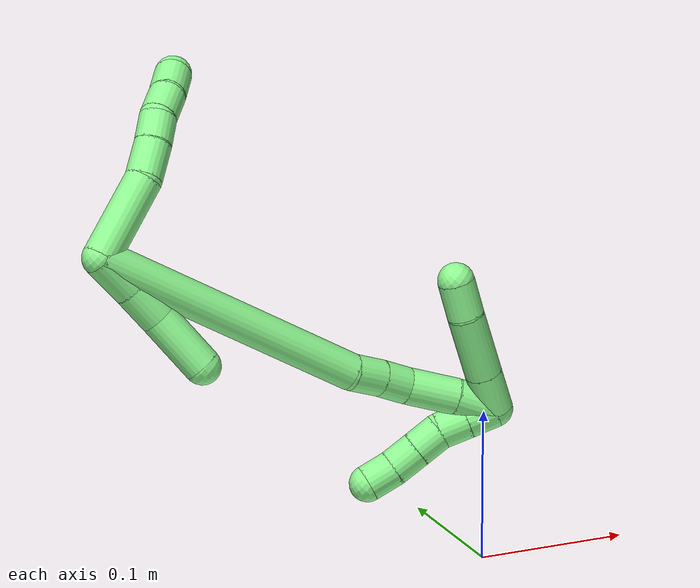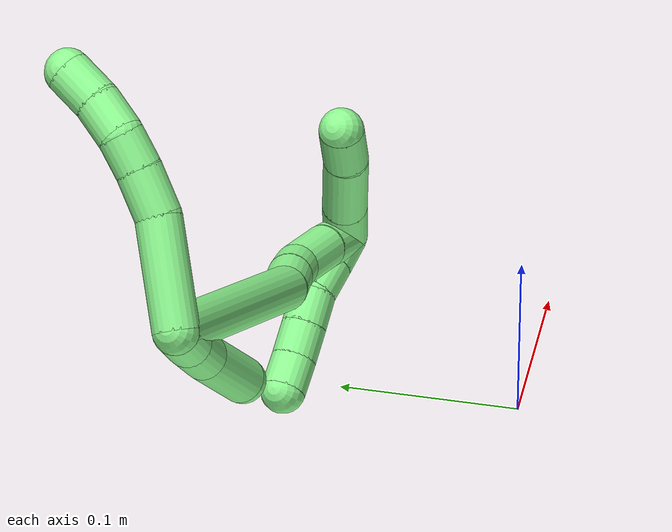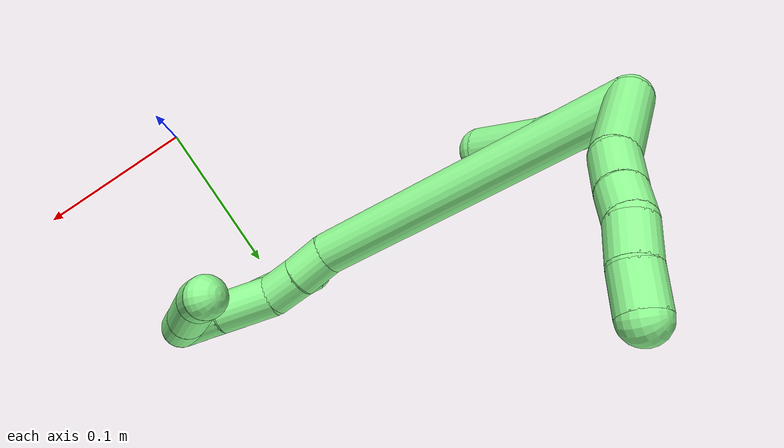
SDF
<sdf version="1.7">
 <world name="default">
  <model name="13">
   <static>0</static>
   <link name="13">
    <collision name="collision-cylinder-e_1_2_8">
     <pose>0.027789 0.009765 0.004593 -1.13111 1.20041 -0.819652</pose>
     <geometry><cylinder><radius>0.0125</radius><length>0.059622</length></cylinder></geometry>
     <surface>
      <friction><ode><mu>1.16</mu><mu2>1.16</mu2><slip1>0</slip1><slip2>0</slip2></ode></friction>
      <contact><ode><kp>1e+06</kp><kd>1</kd><max_vel>0</max_vel><min_depth>0.001</min_depth></ode></contact>
     </surface>
    </collision>
    <visual name="visual-cylinder-e_1_2_8">
     <pose>0.027789 0.009765 0.004593 -1.13111 1.20041 -0.819652</pose>
     <geometry><cylinder><radius>0.0125</radius><length>0.059622</length></cylinder></geometry>
     <material><ambient>0.564706 0.984314 0.572549 1</ambient></material>
    </visual>
    <collision name="collision-cylinder-e_2_8_9">
     <pose>0.066064 0.025843 0.013341 -0.988806 0.946174 -0.538442</pose>
     <geometry><cylinder><radius>0.0125</radius><length>0.025851</length></cylinder></geometry>
     <surface>
      <friction><ode><mu>1.16</mu><mu2>1.16</mu2><slip1>0</slip1><slip2>0</slip2></ode></friction>
      <contact><ode><kp>1e+06</kp><kd>1</kd><max_vel>0</max_vel><min_depth>0.001</min_depth></ode></contact>
     </surface>
    </collision>
    <visual name="visual-cylinder-e_2_8_9">
     <pose>0.066064 0.025843 0.013341 -0.988806 0.946174 -0.538442</pose>
     <geometry><cylinder><radius>0.0125</radius><length>0.025851</length></cylinder></geometry>
     <material><ambient>0.564706 0.984314 0.572549 1</ambient></material>
    </visual>
    <collision name="collision-cylinder-e_3_9_10">
     <pose>0.084157 0.037618 0.021088 -0.988894 0.861086 -0.485443</pose>
     <geometry><cylinder><radius>0.0125</radius><length>0.02006</length></cylinder></geometry>
     <surface>
      <friction><ode><mu>1.16</mu><mu2>1.16</mu2><slip1>0</slip1><slip2>0</slip2></ode></friction>
      <contact><ode><kp>1e+06</kp><kd>1</kd><max_vel>0</max_vel><min_depth>0.001</min_depth></ode></contact>
     </surface>
    </collision>
    <visual name="visual-cylinder-e_3_9_10">
     <pose>0.084157 0.037618 0.021088 -0.988894 0.861086 -0.485443</pose>
     <geometry><cylinder><radius>0.0125</radius><length>0.02006</length></cylinder></geometry>
     <material><ambient>0.564706 0.984314 0.572549 1</ambient></material>
    </visual>
    <collision name="collision-cylinder-e_4_10_11">
     <pose>0.099107 0.051107 0.0259 -1.42003 0.735008 -0.639164</pose>
     <geometry><cylinder><radius>0.0125</radius><length>0.021895</length></cylinder></geometry>
     <surface>
      <friction><ode><mu>1.16</mu><mu2>1.16</mu2><slip1>0</slip1><slip2>0</slip2></ode></friction>
      <contact><ode><kp>1e+06</kp><kd>1</kd><max_vel>0</max_vel><min_depth>0.001</min_depth></ode></contact>
     </surface>
    </collision>
    <visual name="visual-cylinder-e_4_10_11">
     <pose>0.099107 0.051107 0.0259 -1.42003 0.735008 -0.639164</pose>
     <geometry><cylinder><radius>0.0125</radius><length>0.021895</length></cylinder></geometry>
     <material><ambient>0.564706 0.984314 0.572549 1</ambient></material>
    </visual>
    <collision name="collision-cylinder-e_5_11_6">
     <pose>0.112656 0.068447 0.028581 -1.41516 0.582404 -0.501915</pose>
     <geometry><cylinder><radius>0.0125</radius><length>0.022572</length></cylinder></geometry>
     <surface>
      <friction><ode><mu>1.16</mu><mu2>1.16</mu2><slip1>0</slip1><slip2>0</slip2></ode></friction>
      <contact><ode><kp>1e+06</kp><kd>1</kd><max_vel>0</max_vel><min_depth>0.001</min_depth></ode></contact>
     </surface>
    </collision>
    <visual name="visual-cylinder-e_5_11_6">
     <pose>0.112656 0.068447 0.028581 -1.41516 0.582404 -0.501915</pose>
     <geometry><cylinder><radius>0.0125</radius><length>0.022572</length></cylinder></geometry>
     <material><ambient>0.564706 0.984314 0.572549 1</ambient></material>
    </visual>
    <collision name="collision-cylinder-e_1_2_12">
     <pose>-0.001376 0.003157 -0.014784 -2.93124 -0.090788 0.812705</pose>
     <geometry><cylinder><radius>0.0125</radius><length>0.03036</length></cylinder></geometry>
     <surface>
      <friction><ode><mu>1.16</mu><mu2>1.16</mu2><slip1>0</slip1><slip2>0</slip2></ode></friction>
      <contact><ode><kp>1e+06</kp><kd>1</kd><max_vel>0</max_vel><min_depth>0.001</min_depth></ode></contact>
     </surface>
    </collision>
    <visual name="visual-cylinder-e_1_2_12">
     <pose>-0.001376 0.003157 -0.014784 -2.93124 -0.090788 0.812705</pose>
     <geometry><cylinder><radius>0.0125</radius><length>0.03036</length></cylinder></geometry>
     <material><ambient>0.564706 0.984314 0.572549 1</ambient></material>
    </visual>
    <collision name="collision-cylinder-e_2_12_13">
     <pose>-0.004291 0.0075 -0.042837 -3.0524 -0.11501 1.82275</pose>
     <geometry><cylinder><radius>0.0125</radius><length>0.026821</length></cylinder></geometry>
     <surface>
      <friction><ode><mu>1.16</mu><mu2>1.16</mu2><slip1>0</slip1><slip2>0</slip2></ode></friction>
      <contact><ode><kp>1e+06</kp><kd>1</kd><max_vel>0</max_vel><min_depth>0.001</min_depth></ode></contact>
     </surface>
    </collision>
    <visual name="visual-cylinder-e_2_12_13">
     <pose>-0.004291 0.0075 -0.042837 -3.0524 -0.11501 1.82275</pose>
     <geometry><cylinder><radius>0.0125</radius><length>0.026821</length></cylinder></geometry>
     <material><ambient>0.564706 0.984314 0.572549 1</ambient></material>
    </visual>
    <collision name="collision-cylinder-e_3_13_5">
     <pose>-0.008415 0.006691 -0.077265 3.04756 -0.120995 -1.8207</pose>
     <geometry><cylinder><radius>0.0125</radius><length>0.042819</length></cylinder></geometry>
     <surface>
      <friction><ode><mu>1.16</mu><mu2>1.16</mu2><slip1>0</slip1><slip2>0</slip2></ode></friction>
      <contact><ode><kp>1e+06</kp><kd>1</kd><max_vel>0</max_vel><min_depth>0.001</min_depth></ode></contact>
     </surface>
    </collision>
    <visual name="visual-cylinder-e_3_13_5">
     <pose>-0.008415 0.006691 -0.077265 3.04756 -0.120995 -1.8207</pose>
     <geometry><cylinder><radius>0.0125</radius><length>0.042819</length></cylinder></geometry>
     <material><ambient>0.564706 0.984314 0.572549 1</ambient></material>
    </visual>
    <collision name="collision-cylinder-e_1_2_14">
     <pose>0.024023 0.016436 -0.09173 -2.9643 0.252287 -1.919</pose>
     <geometry><cylinder><radius>0.0125</radius><length>0.192474</length></cylinder></geometry>
     <surface>
      <friction><ode><mu>1.16</mu><mu2>1.16</mu2><slip1>0</slip1><slip2>0</slip2></ode></friction>
      <contact><ode><kp>1e+06</kp><kd>1</kd><max_vel>0</max_vel><min_depth>0.001</min_depth></ode></contact>
     </surface>
    </collision>
    <visual name="visual-cylinder-e_1_2_14">
     <pose>0.024023 0.016436 -0.09173 -2.9643 0.252287 -1.919</pose>
     <geometry><cylinder><radius>0.0125</radius><length>0.192474</length></cylinder></geometry>
     <material><ambient>0.564706 0.984314 0.572549 1</ambient></material>
    </visual>
    <collision name="collision-cylinder-e_2_14_15">
     <pose>0.052546 0.036857 -0.193102 -2.74966 0.407251 -1.61017</pose>
     <geometry><cylinder><radius>0.0125</radius><length>0.022726</length></cylinder></geometry>
     <surface>
      <friction><ode><mu>1.16</mu><mu2>1.16</mu2><slip1>0</slip1><slip2>0</slip2></ode></friction>
      <contact><ode><kp>1e+06</kp><kd>1</kd><max_vel>0</max_vel><min_depth>0.001</min_depth></ode></contact>
     </surface>
    </collision>
    <visual name="visual-cylinder-e_2_14_15">
     <pose>0.052546 0.036857 -0.193102 -2.74966 0.407251 -1.61017</pose>
     <geometry><cylinder><radius>0.0125</radius><length>0.022726</length></cylinder></geometry>
     <material><ambient>0.564706 0.984314 0.572549 1</ambient></material>
    </visual>
    <collision name="collision-cylinder-e_3_15_16">
     <pose>0.060756 0.044039 -0.212148 -2.81385 0.357442 -1.65914</pose>
     <geometry><cylinder><radius>0.0125</radius><length>0.021205</length></cylinder></geometry>
     <surface>
      <friction><ode><mu>1.16</mu><mu2>1.16</mu2><slip1>0</slip1><slip2>0</slip2></ode></friction>
      <contact><ode><kp>1e+06</kp><kd>1</kd><max_vel>0</max_vel><min_depth>0.001</min_depth></ode></contact>
     </surface>
    </collision>
    <visual name="visual-cylinder-e_3_15_16">
     <pose>0.060756 0.044039 -0.212148 -2.81385 0.357442 -1.65914</pose>
     <geometry><cylinder><radius>0.0125</radius><length>0.021205</length></cylinder></geometry>
     <material><ambient>0.564706 0.984314 0.572549 1</ambient></material>
    </visual>
    <collision name="collision-cylinder-e_4_16_17">
     <pose>0.072606 0.047656 -0.237231 -3.11489 0.478705 -3.03228</pose>
     <geometry><cylinder><radius>0.0125</radius><length>0.035343</length></cylinder></geometry>
     <surface>
      <friction><ode><mu>1.16</mu><mu2>1.16</mu2><slip1>0</slip1><slip2>0</slip2></ode></friction>
      <contact><ode><kp>1e+06</kp><kd>1</kd><max_vel>0</max_vel><min_depth>0.001</min_depth></ode></contact>
     </surface>
    </collision>
    <visual name="visual-cylinder-e_4_16_17">
     <pose>0.072606 0.047656 -0.237231 -3.11489 0.478705 -3.03228</pose>
     <geometry><cylinder><radius>0.0125</radius><length>0.035343</length></cylinder></geometry>
     <material><ambient>0.564706 0.984314 0.572549 1</ambient></material>
    </visual>
    <collision name="collision-cylinder-e_5_17_1">
     <pose>0.086107 0.04872 -0.265964 -3.0922 0.389294 -2.89229</pose>
     <geometry><cylinder><radius>0.0125</radius><length>0.028252</length></cylinder></geometry>
     <surface>
      <friction><ode><mu>1.16</mu><mu2>1.16</mu2><slip1>0</slip1><slip2>0</slip2></ode></friction>
      <contact><ode><kp>1e+06</kp><kd>1</kd><max_vel>0</max_vel><min_depth>0.001</min_depth></ode></contact>
     </surface>
    </collision>
    <visual name="visual-cylinder-e_5_17_1">
     <pose>0.086107 0.04872 -0.265964 -3.0922 0.389294 -2.89229</pose>
     <geometry><cylinder><radius>0.0125</radius><length>0.028252</length></cylinder></geometry>
     <material><ambient>0.564706 0.984314 0.572549 1</ambient></material>
    </visual>
    <collision name="collision-cylinder-e_1_1_18">
     <pose>0.082507 0.050046 -0.274632 -0.154017 -1.11099 0.095714</pose>
     <geometry><cylinder><radius>0.0125</radius><length>0.02</length></cylinder></geometry>
     <surface>
      <friction><ode><mu>1.16</mu><mu2>1.16</mu2><slip1>0</slip1><slip2>0</slip2></ode></friction>
      <contact><ode><kp>1e+06</kp><kd>1</kd><max_vel>0</max_vel><min_depth>0.001</min_depth></ode></contact>
     </surface>
    </collision>
    <visual name="visual-cylinder-e_1_1_18">
     <pose>0.082507 0.050046 -0.274632 -0.154017 -1.11099 0.095714</pose>
     <geometry><cylinder><radius>0.0125</radius><length>0.02</length></cylinder></geometry>
     <material><ambient>0.564706 0.984314 0.572549 1</ambient></material>
    </visual>
    <collision name="collision-cylinder-e_2_18_19">
     <pose>0.064636 0.051511 -0.265775 -0.173655 -1.09959 0.106587</pose>
     <geometry><cylinder><radius>0.0125</radius><length>0.02</length></cylinder></geometry>
     <surface>
      <friction><ode><mu>1.16</mu><mu2>1.16</mu2><slip1>0</slip1><slip2>0</slip2></ode></friction>
      <contact><ode><kp>1e+06</kp><kd>1</kd><max_vel>0</max_vel><min_depth>0.001</min_depth></ode></contact>
     </surface>
    </collision>
    <visual name="visual-cylinder-e_2_18_19">
     <pose>0.064636 0.051511 -0.265775 -0.173655 -1.09959 0.106587</pose>
     <geometry><cylinder><radius>0.0125</radius><length>0.02</length></cylinder></geometry>
     <material><ambient>0.564706 0.984314 0.572549 1</ambient></material>
    </visual>
    <collision name="collision-cylinder-e_3_19_20">
     <pose>0.045904 0.052134 -0.259427 0.085665 -1.38128 -0.070808</pose>
     <geometry><cylinder><radius>0.0125</radius><length>0.02</length></cylinder></geometry>
     <surface>
      <friction><ode><mu>1.16</mu><mu2>1.16</mu2><slip1>0</slip1><slip2>0</slip2></ode></friction>
      <contact><ode><kp>1e+06</kp><kd>1</kd><max_vel>0</max_vel><min_depth>0.001</min_depth></ode></contact>
     </surface>
    </collision>
    <visual name="visual-cylinder-e_3_19_20">
     <pose>0.045904 0.052134 -0.259427 0.085665 -1.38128 -0.070808</pose>
     <geometry><cylinder><radius>0.0125</radius><length>0.02</length></cylinder></geometry>
     <material><ambient>0.564706 0.984314 0.572549 1</ambient></material>
    </visual>
    <collision name="collision-cylinder-e_4_20_21">
     <pose>0.026267 0.051912 -0.255643 0.031806 -1.37884 -0.02622</pose>
     <geometry><cylinder><radius>0.0125</radius><length>0.02</length></cylinder></geometry>
     <surface>
      <friction><ode><mu>1.16</mu><mu2>1.16</mu2><slip1>0</slip1><slip2>0</slip2></ode></friction>
      <contact><ode><kp>1e+06</kp><kd>1</kd><max_vel>0</max_vel><min_depth>0.001</min_depth></ode></contact>
     </surface>
    </collision>
    <visual name="visual-cylinder-e_4_20_21">
     <pose>0.026267 0.051912 -0.255643 0.031806 -1.37884 -0.02622</pose>
     <geometry><cylinder><radius>0.0125</radius><length>0.02</length></cylinder></geometry>
     <material><ambient>0.564706 0.984314 0.572549 1</ambient></material>
    </visual>
    <collision name="collision-cylinder-e_5_21_4">
     <pose>0.007 0.051403 -0.250499 0.137618 -1.23789 -0.098104</pose>
     <geometry><cylinder><radius>0.0125</radius><length>0.02</length></cylinder></geometry>
     <surface>
      <friction><ode><mu>1.16</mu><mu2>1.16</mu2><slip1>0</slip1><slip2>0</slip2></ode></friction>
      <contact><ode><kp>1e+06</kp><kd>1</kd><max_vel>0</max_vel><min_depth>0.001</min_depth></ode></contact>
     </surface>
    </collision>
    <visual name="visual-cylinder-e_5_21_4">
     <pose>0.007 0.051403 -0.250499 0.137618 -1.23789 -0.098104</pose>
     <geometry><cylinder><radius>0.0125</radius><length>0.02</length></cylinder></geometry>
     <material><ambient>0.564706 0.984314 0.572549 1</ambient></material>
    </visual>
    <collision name="collision-cylinder-e_1_1_22">
     <pose>0.098149 0.04567 -0.26685 0.294821 0.483749 0.073232</pose>
     <geometry><cylinder><radius>0.0125</radius><length>0.028728</length></cylinder></geometry>
     <surface>
      <friction><ode><mu>1.16</mu><mu2>1.16</mu2><slip1>0</slip1><slip2>0</slip2></ode></friction>
      <contact><ode><kp>1e+06</kp><kd>1</kd><max_vel>0</max_vel><min_depth>0.001</min_depth></ode></contact>
     </surface>
    </collision>
    <visual name="visual-cylinder-e_1_1_22">
     <pose>0.098149 0.04567 -0.26685 0.294821 0.483749 0.073232</pose>
     <geometry><cylinder><radius>0.0125</radius><length>0.028728</length></cylinder></geometry>
     <material><ambient>0.564706 0.984314 0.572549 1</ambient></material>
    </visual>
    <collision name="collision-cylinder-e_2_22_23">
     <pose>0.115534 0.035573 -0.235236 0.318066 0.481746 0.078755</pose>
     <geometry><cylinder><radius>0.0125</radius><length>0.046205</length></cylinder></geometry>
     <surface>
      <friction><ode><mu>1.16</mu><mu2>1.16</mu2><slip1>0</slip1><slip2>0</slip2></ode></friction>
      <contact><ode><kp>1e+06</kp><kd>1</kd><max_vel>0</max_vel><min_depth>0.001</min_depth></ode></contact>
     </surface>
    </collision>
    <visual name="visual-cylinder-e_2_22_23">
     <pose>0.115534 0.035573 -0.235236 0.318066 0.481746 0.078755</pose>
     <geometry><cylinder><radius>0.0125</radius><length>0.046205</length></cylinder></geometry>
     <material><ambient>0.564706 0.984314 0.572549 1</ambient></material>
    </visual>
    <collision name="collision-cylinder-e_3_23_3">
     <pose>0.132677 0.027394 -0.205185 0.165891 0.539526 0.045967</pose>
     <geometry><cylinder><radius>0.0125</radius><length>0.025067</length></cylinder></geometry>
     <surface>
      <friction><ode><mu>1.16</mu><mu2>1.16</mu2><slip1>0</slip1><slip2>0</slip2></ode></friction>
      <contact><ode><kp>1e+06</kp><kd>1</kd><max_vel>0</max_vel><min_depth>0.001</min_depth></ode></contact>
     </surface>
    </collision>
    <visual name="visual-cylinder-e_3_23_3">
     <pose>0.132677 0.027394 -0.205185 0.165891 0.539526 0.045967</pose>
     <geometry><cylinder><radius>0.0125</radius><length>0.025067</length></cylinder></geometry>
     <material><ambient>0.564706 0.984314 0.572549 1</ambient></material>
    </visual>
    <collision name="collision-sphere-3">
     <pose>0.139116 0.025619 -0.194579 0 -0 0</pose>
     <geometry><sphere><radius>0.0125</radius></sphere></geometry>
     <surface>
      <friction><ode><mu>1.16</mu><mu2>1.16</mu2><slip1>0</slip1><slip2>0</slip2></ode></friction>
      <contact><ode><kp>1e+06</kp><kd>1</kd><max_vel>0</max_vel><min_depth>0.001</min_depth></ode></contact>
     </surface>
    </collision>
    <visual name="visual-sphere-3">
     <pose>0.139116 0.025619 -0.194579 0 -0 0</pose>
     <geometry><sphere><radius>0.0125</radius></sphere></geometry>
     <material><ambient>0.564706 0.984314 0.572549 1</ambient></material>
    </visual>
    <collision name="collision-sphere-23">
     <pose>0.126238 0.02917 -0.21579 0 -0 0</pose>
     <geometry><sphere><radius>0.0125</radius></sphere></geometry>
     <surface>
      <friction><ode><mu>1.16</mu><mu2>1.16</mu2><slip1>0</slip1><slip2>0</slip2></ode></friction>
      <contact><ode><kp>1e+06</kp><kd>1</kd><max_vel>0</max_vel><min_depth>0.001</min_depth></ode></contact>
     </surface>
    </collision>
    <visual name="visual-sphere-23">
     <pose>0.126238 0.02917 -0.21579 0 -0 0</pose>
     <geometry><sphere><radius>0.0125</radius></sphere></geometry>
     <material><ambient>0.564706 0.984314 0.572549 1</ambient></material>
    </visual>
    <collision name="collision-sphere-22">
     <pose>0.10483 0.041975 -0.254683 0 -0 0</pose>
     <geometry><sphere><radius>0.0125</radius></sphere></geometry>
     <surface>
      <friction><ode><mu>1.16</mu><mu2>1.16</mu2><slip1>0</slip1><slip2>0</slip2></ode></friction>
      <contact><ode><kp>1e+06</kp><kd>1</kd><max_vel>0</max_vel><min_depth>0.001</min_depth></ode></contact>
     </surface>
    </collision>
    <visual name="visual-sphere-22">
     <pose>0.10483 0.041975 -0.254683 0 -0 0</pose>
     <geometry><sphere><radius>0.0125</radius></sphere></geometry>
     <material><ambient>0.564706 0.984314 0.572549 1</ambient></material>
    </visual>
    <collision name="collision-sphere-4">
     <pose>-0.002451 0.050955 -0.247262 0 -0 0</pose>
     <geometry><sphere><radius>0.0125</radius></sphere></geometry>
     <surface>
      <friction><ode><mu>1.16</mu><mu2>1.16</mu2><slip1>0</slip1><slip2>0</slip2></ode></friction>
      <contact><ode><kp>1e+06</kp><kd>1</kd><max_vel>0</max_vel><min_depth>0.001</min_depth></ode></contact>
     </surface>
    </collision>
    <visual name="visual-sphere-4">
     <pose>-0.002451 0.050955 -0.247262 0 -0 0</pose>
     <geometry><sphere><radius>0.0125</radius></sphere></geometry>
     <material><ambient>0.564706 0.984314 0.572549 1</ambient></material>
    </visual>
    <collision name="collision-sphere-21">
     <pose>0.016451 0.051851 -0.253736 0 -0 0</pose>
     <geometry><sphere><radius>0.0125</radius></sphere></geometry>
     <surface>
      <friction><ode><mu>1.16</mu><mu2>1.16</mu2><slip1>0</slip1><slip2>0</slip2></ode></friction>
      <contact><ode><kp>1e+06</kp><kd>1</kd><max_vel>0</max_vel><min_depth>0.001</min_depth></ode></contact>
     </surface>
    </collision>
    <visual name="visual-sphere-21">
     <pose>0.016451 0.051851 -0.253736 0 -0 0</pose>
     <geometry><sphere><radius>0.0125</radius></sphere></geometry>
     <material><ambient>0.564706 0.984314 0.572549 1</ambient></material>
    </visual>
    <collision name="collision-sphere-20">
     <pose>0.036083 0.051973 -0.25755 0 -0 0</pose>
     <geometry><sphere><radius>0.0125</radius></sphere></geometry>
     <surface>
      <friction><ode><mu>1.16</mu><mu2>1.16</mu2><slip1>0</slip1><slip2>0</slip2></ode></friction>
      <contact><ode><kp>1e+06</kp><kd>1</kd><max_vel>0</max_vel><min_depth>0.001</min_depth></ode></contact>
     </surface>
    </collision>
    <visual name="visual-sphere-20">
     <pose>0.036083 0.051973 -0.25755 0 -0 0</pose>
     <geometry><sphere><radius>0.0125</radius></sphere></geometry>
     <material><ambient>0.564706 0.984314 0.572549 1</ambient></material>
    </visual>
    <collision name="collision-sphere-6">
     <pose>0.118863 0.077759 0.030042 0 -0 0</pose>
     <geometry><sphere><radius>0.0125</radius></sphere></geometry>
     <surface>
      <friction><ode><mu>1.16</mu><mu2>1.16</mu2><slip1>0</slip1><slip2>0</slip2></ode></friction>
      <contact><ode><kp>1e+06</kp><kd>1</kd><max_vel>0</max_vel><min_depth>0.001</min_depth></ode></contact>
     </surface>
    </collision>
    <visual name="visual-sphere-6">
     <pose>0.118863 0.077759 0.030042 0 -0 0</pose>
     <geometry><sphere><radius>0.0125</radius></sphere></geometry>
     <material><ambient>0.564706 0.984314 0.572549 1</ambient></material>
    </visual>
    <collision name="collision-sphere-11">
     <pose>0.106448 0.059136 0.02712 0 -0 0</pose>
     <geometry><sphere><radius>0.0125</radius></sphere></geometry>
     <surface>
      <friction><ode><mu>1.16</mu><mu2>1.16</mu2><slip1>0</slip1><slip2>0</slip2></ode></friction>
      <contact><ode><kp>1e+06</kp><kd>1</kd><max_vel>0</max_vel><min_depth>0.001</min_depth></ode></contact>
     </surface>
    </collision>
    <visual name="visual-sphere-11">
     <pose>0.106448 0.059136 0.02712 0 -0 0</pose>
     <geometry><sphere><radius>0.0125</radius></sphere></geometry>
     <material><ambient>0.564706 0.984314 0.572549 1</ambient></material>
    </visual>
    <collision name="collision-sphere-10">
     <pose>0.091765 0.043078 0.02468 0 -0 0</pose>
     <geometry><sphere><radius>0.0125</radius></sphere></geometry>
     <surface>
      <friction><ode><mu>1.16</mu><mu2>1.16</mu2><slip1>0</slip1><slip2>0</slip2></ode></friction>
      <contact><ode><kp>1e+06</kp><kd>1</kd><max_vel>0</max_vel><min_depth>0.001</min_depth></ode></contact>
     </surface>
    </collision>
    <visual name="visual-sphere-10">
     <pose>0.091765 0.043078 0.02468 0 -0 0</pose>
     <geometry><sphere><radius>0.0125</radius></sphere></geometry>
     <material><ambient>0.564706 0.984314 0.572549 1</ambient></material>
    </visual>
    <collision name="collision-sphere-9">
     <pose>0.076549 0.032158 0.017496 0 -0 0</pose>
     <geometry><sphere><radius>0.0125</radius></sphere></geometry>
     <surface>
      <friction><ode><mu>1.16</mu><mu2>1.16</mu2><slip1>0</slip1><slip2>0</slip2></ode></friction>
      <contact><ode><kp>1e+06</kp><kd>1</kd><max_vel>0</max_vel><min_depth>0.001</min_depth></ode></contact>
     </surface>
    </collision>
    <visual name="visual-sphere-9">
     <pose>0.076549 0.032158 0.017496 0 -0 0</pose>
     <geometry><sphere><radius>0.0125</radius></sphere></geometry>
     <material><ambient>0.564706 0.984314 0.572549 1</ambient></material>
    </visual>
    <collision name="collision-sphere-2">
     <geometry><sphere><radius>0.0125</radius></sphere></geometry>
     <surface>
      <friction><ode><mu>1.16</mu><mu2>1.16</mu2><slip1>0</slip1><slip2>0</slip2></ode></friction>
      <contact><ode><kp>1e+06</kp><kd>1</kd><max_vel>0</max_vel><min_depth>0.001</min_depth></ode></contact>
     </surface>
    </collision>
    <visual name="visual-sphere-2">
     <geometry><sphere><radius>0.0125</radius></sphere></geometry>
     <material><ambient>0.564706 0.984314 0.572549 1</ambient></material>
    </visual>
    <collision name="collision-sphere-19">
     <pose>0.055725 0.052295 -0.261304 0 -0 0</pose>
     <geometry><sphere><radius>0.0125</radius></sphere></geometry>
     <surface>
      <friction><ode><mu>1.16</mu><mu2>1.16</mu2><slip1>0</slip1><slip2>0</slip2></ode></friction>
      <contact><ode><kp>1e+06</kp><kd>1</kd><max_vel>0</max_vel><min_depth>0.001</min_depth></ode></contact>
     </surface>
    </collision>
    <visual name="visual-sphere-19">
     <pose>0.055725 0.052295 -0.261304 0 -0 0</pose>
     <geometry><sphere><radius>0.0125</radius></sphere></geometry>
     <material><ambient>0.564706 0.984314 0.572549 1</ambient></material>
    </visual>
    <collision name="collision-sphere-8">
     <pose>0.055579 0.019529 0.009186 0 -0 0</pose>
     <geometry><sphere><radius>0.0125</radius></sphere></geometry>
     <surface>
      <friction><ode><mu>1.16</mu><mu2>1.16</mu2><slip1>0</slip1><slip2>0</slip2></ode></friction>
      <contact><ode><kp>1e+06</kp><kd>1</kd><max_vel>0</max_vel><min_depth>0.001</min_depth></ode></contact>
     </surface>
    </collision>
    <visual name="visual-sphere-8">
     <pose>0.055579 0.019529 0.009186 0 -0 0</pose>
     <geometry><sphere><radius>0.0125</radius></sphere></geometry>
     <material><ambient>0.564706 0.984314 0.572549 1</ambient></material>
    </visual>
    <collision name="collision-sphere-12">
     <pose>-0.002752 0.006313 -0.029568 0 -0 0</pose>
     <geometry><sphere><radius>0.0125</radius></sphere></geometry>
     <surface>
      <friction><ode><mu>1.16</mu><mu2>1.16</mu2><slip1>0</slip1><slip2>0</slip2></ode></friction>
      <contact><ode><kp>1e+06</kp><kd>1</kd><max_vel>0</max_vel><min_depth>0.001</min_depth></ode></contact>
     </surface>
    </collision>
    <visual name="visual-sphere-12">
     <pose>-0.002752 0.006313 -0.029568 0 -0 0</pose>
     <geometry><sphere><radius>0.0125</radius></sphere></geometry>
     <material><ambient>0.564706 0.984314 0.572549 1</ambient></material>
    </visual>
    <collision name="collision-sphere-13">
     <pose>-0.00583 0.008686 -0.056106 0 -0 0</pose>
     <geometry><sphere><radius>0.0125</radius></sphere></geometry>
     <surface>
      <friction><ode><mu>1.16</mu><mu2>1.16</mu2><slip1>0</slip1><slip2>0</slip2></ode></friction>
      <contact><ode><kp>1e+06</kp><kd>1</kd><max_vel>0</max_vel><min_depth>0.001</min_depth></ode></contact>
     </surface>
    </collision>
    <visual name="visual-sphere-13">
     <pose>-0.00583 0.008686 -0.056106 0 -0 0</pose>
     <geometry><sphere><radius>0.0125</radius></sphere></geometry>
     <material><ambient>0.564706 0.984314 0.572549 1</ambient></material>
    </visual>
    <collision name="collision-sphere-5">
     <pose>-0.010999 0.004695 -0.098425 0 -0 0</pose>
     <geometry><sphere><radius>0.0125</radius></sphere></geometry>
     <surface>
      <friction><ode><mu>1.16</mu><mu2>1.16</mu2><slip1>0</slip1><slip2>0</slip2></ode></friction>
      <contact><ode><kp>1e+06</kp><kd>1</kd><max_vel>0</max_vel><min_depth>0.001</min_depth></ode></contact>
     </surface>
    </collision>
    <visual name="visual-sphere-5">
     <pose>-0.010999 0.004695 -0.098425 0 -0 0</pose>
     <geometry><sphere><radius>0.0125</radius></sphere></geometry>
     <material><ambient>0.564706 0.984314 0.572549 1</ambient></material>
    </visual>
    <collision name="collision-sphere-14">
     <pose>0.048045 0.032871 -0.183459 0 -0 0</pose>
     <geometry><sphere><radius>0.0125</radius></sphere></geometry>
     <surface>
      <friction><ode><mu>1.16</mu><mu2>1.16</mu2><slip1>0</slip1><slip2>0</slip2></ode></friction>
      <contact><ode><kp>1e+06</kp><kd>1</kd><max_vel>0</max_vel><min_depth>0.001</min_depth></ode></contact>
     </surface>
    </collision>
    <visual name="visual-sphere-14">
     <pose>0.048045 0.032871 -0.183459 0 -0 0</pose>
     <geometry><sphere><radius>0.0125</radius></sphere></geometry>
     <material><ambient>0.564706 0.984314 0.572549 1</ambient></material>
    </visual>
    <collision name="collision-sphere-15">
     <pose>0.057047 0.040842 -0.202745 0 -0 0</pose>
     <geometry><sphere><radius>0.0125</radius></sphere></geometry>
     <surface>
      <friction><ode><mu>1.16</mu><mu2>1.16</mu2><slip1>0</slip1><slip2>0</slip2></ode></friction>
      <contact><ode><kp>1e+06</kp><kd>1</kd><max_vel>0</max_vel><min_depth>0.001</min_depth></ode></contact>
     </surface>
    </collision>
    <visual name="visual-sphere-15">
     <pose>0.057047 0.040842 -0.202745 0 -0 0</pose>
     <geometry><sphere><radius>0.0125</radius></sphere></geometry>
     <material><ambient>0.564706 0.984314 0.572549 1</ambient></material>
    </visual>
    <collision name="collision-sphere-16">
     <pose>0.064466 0.047237 -0.221552 0 -0 0</pose>
     <geometry><sphere><radius>0.0125</radius></sphere></geometry>
     <surface>
      <friction><ode><mu>1.16</mu><mu2>1.16</mu2><slip1>0</slip1><slip2>0</slip2></ode></friction>
      <contact><ode><kp>1e+06</kp><kd>1</kd><max_vel>0</max_vel><min_depth>0.001</min_depth></ode></contact>
     </surface>
    </collision>
    <visual name="visual-sphere-16">
     <pose>0.064466 0.047237 -0.221552 0 -0 0</pose>
     <geometry><sphere><radius>0.0125</radius></sphere></geometry>
     <material><ambient>0.564706 0.984314 0.572549 1</ambient></material>
    </visual>
    <collision name="collision-sphere-17">
     <pose>0.080746 0.048074 -0.252911 0 -0 0</pose>
     <geometry><sphere><radius>0.0125</radius></sphere></geometry>
     <surface>
      <friction><ode><mu>1.16</mu><mu2>1.16</mu2><slip1>0</slip1><slip2>0</slip2></ode></friction>
      <contact><ode><kp>1e+06</kp><kd>1</kd><max_vel>0</max_vel><min_depth>0.001</min_depth></ode></contact>
     </surface>
    </collision>
    <visual name="visual-sphere-17">
     <pose>0.080746 0.048074 -0.252911 0 -0 0</pose>
     <geometry><sphere><radius>0.0125</radius></sphere></geometry>
     <material><ambient>0.564706 0.984314 0.572549 1</ambient></material>
    </visual>
    <collision name="collision-sphere-1">
     <pose>0.091469 0.049365 -0.279017 0 -0 0</pose>
     <geometry><sphere><radius>0.0125</radius></sphere></geometry>
     <surface>
      <friction><ode><mu>1.16</mu><mu2>1.16</mu2><slip1>0</slip1><slip2>0</slip2></ode></friction>
      <contact><ode><kp>1e+06</kp><kd>1</kd><max_vel>0</max_vel><min_depth>0.001</min_depth></ode></contact>
     </surface>
    </collision>
    <visual name="visual-sphere-1">
     <pose>0.091469 0.049365 -0.279017 0 -0 0</pose>
     <geometry><sphere><radius>0.0125</radius></sphere></geometry>
     <material><ambient>0.564706 0.984314 0.572549 1</ambient></material>
    </visual>
    <collision name="collision-sphere-18">
     <pose>0.073546 0.050726 -0.270247 0 -0 0</pose>
     <geometry><sphere><radius>0.0125</radius></sphere></geometry>
     <surface>
      <friction><ode><mu>1.16</mu><mu2>1.16</mu2><slip1>0</slip1><slip2>0</slip2></ode></friction>
      <contact><ode><kp>1e+06</kp><kd>1</kd><max_vel>0</max_vel><min_depth>0.001</min_depth></ode></contact>
     </surface>
    </collision>
    <visual name="visual-sphere-18">
     <pose>0.073546 0.050726 -0.270247 0 -0 0</pose>
     <geometry><sphere><radius>0.0125</radius></sphere></geometry>
     <material><ambient>0.564706 0.984314 0.572549 1</ambient></material>
    </visual>
    <inertial>
     <pose>0.049818 0.029374 -0.126522 0 -0 0</pose>
     <mass>0.75</mass>
     <inertia>
      <ixx>-0.000731</ixx>
      <ixy>0</ixy>
      <ixz>0</ixz>
      <iyy>-0.000272</iyy>
      <iyz>0</iyz>
      <izz>-0.000308</izz>
     </inertia>
    </inertial>
   </link>
   <pose>-0.204713 0.144393 0.18733 -0.18976 -0.809971 -0.11385</pose>
  </model>
 </world>
</sdf>
